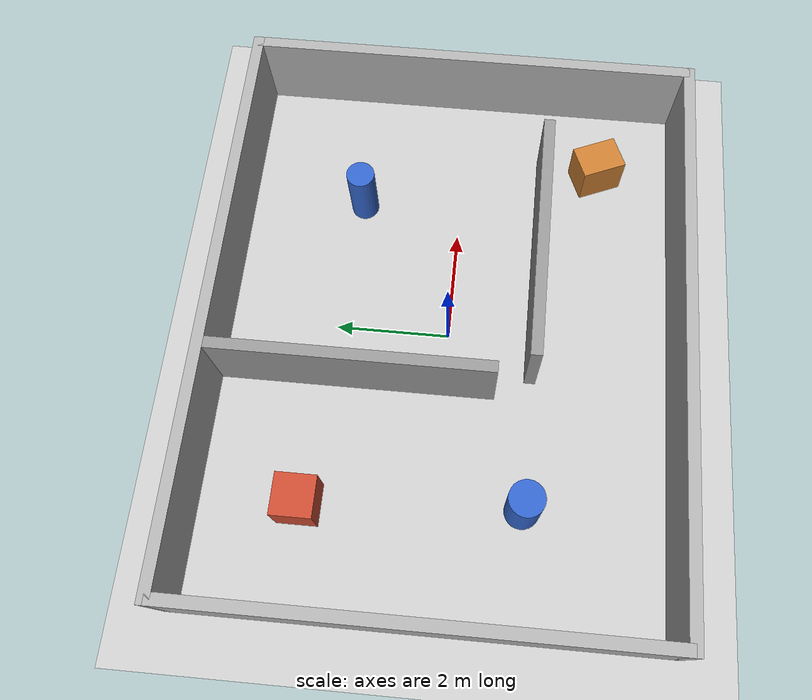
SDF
<?xml version="1.0" ?>
<sdf version="1.6">
  <world name="indoor_obstacle_world">

    <!-- Physics Engine Settings -->
    <physics type="ode">
      <max_step_size>0.001</max_step_size>
      <real_time_factor>1.0</real_time_factor>
      <real_time_update_rate>1000</real_time_update_rate>
    </physics>

    <!-- Sun Light -->
    <include>
      <uri>model://sun</uri>
    </include>

    <!-- Ground Plane -->
    <include>
      <uri>model://ground_plane</uri>
    </include>

    <!-- Outer Perimeter Walls (10m x 8m) -->
    <model name="outer_walls">
      <static>true</static>

      <!-- North Wall -->
      <link name="north_wall">
        <pose>0 4.0 0.75 0 0 0</pose>
        <collision name="collision">
          <geometry><box><size>10.2 0.2 1.5</size></box></geometry>
        </collision>
        <visual name="visual">
          <geometry><box><size>10.2 0.2 1.5</size></box></geometry>
          <material><ambient>0.7 0.7 0.7 1</ambient><diffuse>0.7 0.7 0.7 1</diffuse></material>
        </visual>
      </link>

      <!-- South Wall -->
      <link name="south_wall">
        <pose>0 -4.0 0.75 0 0 0</pose>
        <collision name="collision">
          <geometry><box><size>10.2 0.2 1.5</size></box></geometry>
        </collision>
        <visual name="visual">
          <geometry><box><size>10.2 0.2 1.5</size></box></geometry>
          <material><ambient>0.7 0.7 0.7 1</ambient><diffuse>0.7 0.7 0.7 1</diffuse></material>
        </visual>
      </link>

      <!-- East Wall -->
      <link name="east_wall">
        <pose>5.0 0 0.75 0 0 0</pose>
        <collision name="collision">
          <geometry><box><size>0.2 8.0 1.5</size></box></geometry>
        </collision>
        <visual name="visual">
          <geometry><box><size>0.2 8.0 1.5</size></box></geometry>
          <material><ambient>0.7 0.7 0.7 1</ambient><diffuse>0.7 0.7 0.7 1</diffuse></material>
        </visual>
      </link>

      <!-- West Wall -->
      <link name="west_wall">
        <pose>-5.0 0 0.75 0 0 0</pose>
        <collision name="collision">
          <geometry><box><size>0.2 8.0 1.5</size></box></geometry>
        </collision>
        <visual name="visual">
          <geometry><box><size>0.2 8.0 1.5</size></box></geometry>
          <material><ambient>0.7 0.7 0.7 1</ambient><diffuse>0.7 0.7 0.7 1</diffuse></material>
        </visual>
      </link>

      <!-- Interior Divider Wall 1 -->
      <link name="interior_wall_1">
        <pose>-1.0 1.5 0.75 0 0 0</pose>
        <collision name="collision">
          <geometry><box><size>0.2 4.8 1.5</size></box></geometry>
        </collision>
        <visual name="visual">
          <geometry><box><size>0.2 4.8 1.5</size></box></geometry>
          <material><ambient>0.6 0.6 0.6 1</ambient><diffuse>0.6 0.6 0.6 1</diffuse></material>
        </visual>
      </link>

      <!-- Interior Divider Wall 2 -->
      <link name="interior_wall_2">
        <pose>1.5 -1.5 0.75 0 0 0</pose>
        <collision name="collision">
          <geometry><box><size>4.5 0.2 1.5</size></box></geometry>
        </collision>
        <visual name="visual">
          <geometry><box><size>4.5 0.2 1.5</size></box></geometry>
          <material><ambient>0.6 0.6 0.6 1</ambient><diffuse>0.6 0.6 0.6 1</diffuse></material>
        </visual>
      </link>
    </model>

    <!-- Obstacles Inside Rooms and Corridors -->
    <!-- Pillar 1 -->
    <model name="pillar_1">
      <static>true</static>
      <pose>2.5 1.8 0.6 0 0 0</pose>
      <link name="link">
        <collision name="collision">
          <geometry><cylinder><radius>0.25</radius><length>1.2</length></cylinder></geometry>
        </collision>
        <visual name="visual">
          <geometry><cylinder><radius>0.25</radius><length>1.2</length></cylinder></geometry>
          <material><ambient>0.2 0.4 0.8 1</ambient><diffuse>0.2 0.4 0.8 1</diffuse></material>
        </visual>
      </link>
    </model>

    <!-- Pillar 2 -->
    <model name="pillar_2">
      <static>true</static>
      <pose>-3.0 -1.5 0.6 0 0 0</pose>
      <link name="link">
        <collision name="collision">
          <geometry><cylinder><radius>0.3</radius><length>1.2</length></cylinder></geometry>
        </collision>
        <visual name="visual">
          <geometry><cylinder><radius>0.3</radius><length>1.2</length></cylinder></geometry>
          <material><ambient>0.2 0.4 0.8 1</ambient><diffuse>0.2 0.4 0.8 1</diffuse></material>
        </visual>
      </link>
    </model>

    <!-- Obstacle Box 1 -->
    <model name="box_1">
      <static>true</static>
      <pose>-3.2 2.2 0.4 0 0 0</pose>
      <link name="link">
        <collision name="collision">
          <geometry><box><size>0.7 0.7 0.8</size></box></geometry>
        </collision>
        <visual name="visual">
          <geometry><box><size>0.7 0.7 0.8</size></box></geometry>
          <material><ambient>0.8 0.3 0.2 1</ambient><diffuse>0.8 0.3 0.2 1</diffuse></material>
        </visual>
      </link>
    </model>

    <!-- Obstacle Box 2 -->
    <model name="box_2">
      <static>true</static>
      <pose>3.5 -2.5 0.4 0 0 0.4</pose>
      <link name="link">
        <collision name="collision">
          <geometry><box><size>0.6 0.8 0.8</size></box></geometry>
        </collision>
        <visual name="visual">
          <geometry><box><size>0.6 0.8 0.8</size></box></geometry>
          <material><ambient>0.8 0.5 0.2 1</ambient><diffuse>0.8 0.5 0.2 1</diffuse></material>
        </visual>
      </link>
    </model>

  </world>
</sdf>
